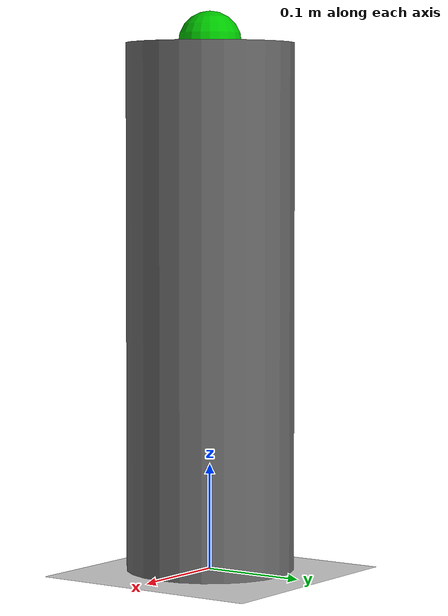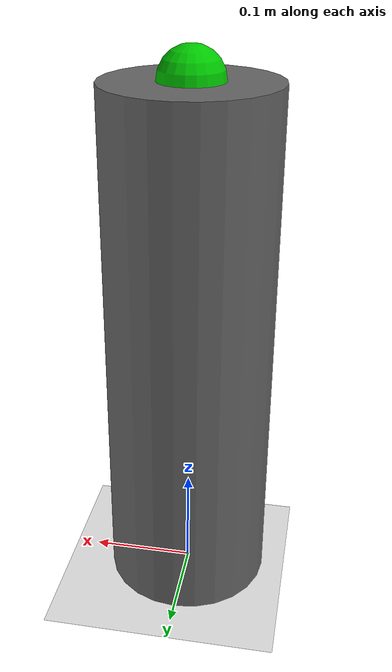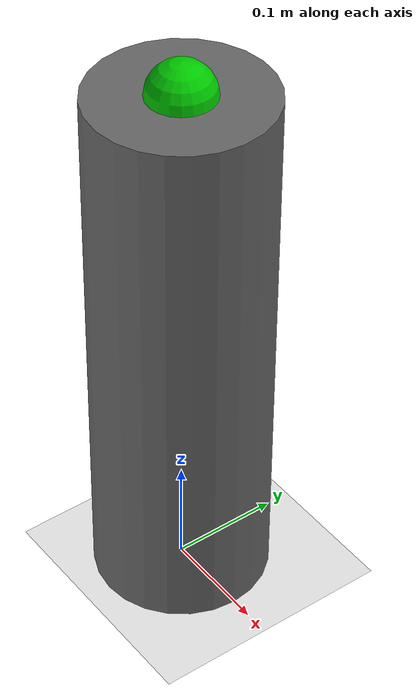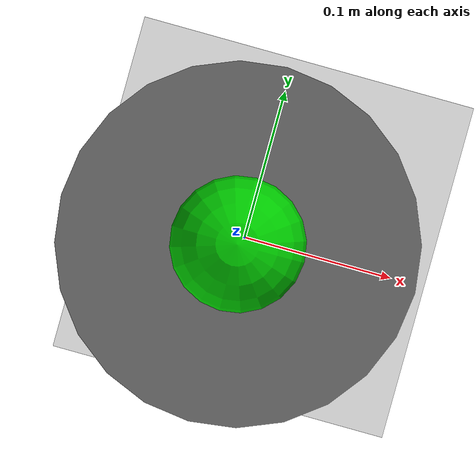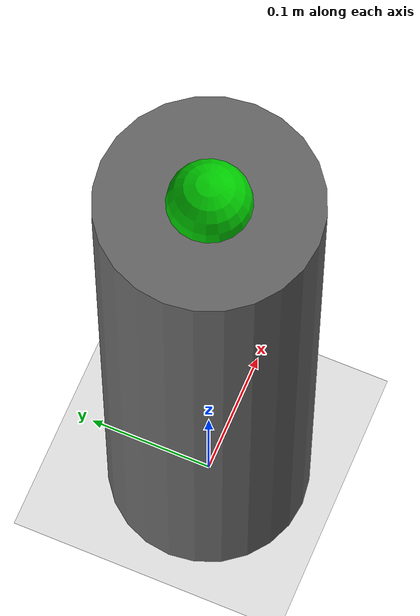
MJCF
<mujoco model="three_link_3d_arm">
    <compiler angle="degree"/>
    <option gravity="0 0 -9.81" timestep="0.002"/>

    <default>
        <joint damping="1.0" limited="true"/>
        <geom contype="0" conaffinity="0"/>
    </default>

    <worldbody>
        <!-- Lighting and ground (provided) -->
        <light name="top" pos="0 0 3" dir="0 0 -1" diffuse="0.8 0.8 0.8"/>
        <light name="front" pos="2 -2 2" dir="-1 1 -1" diffuse="0.5 0.5 0.5"/>
        <geom name="floor" type="plane" size="3 3 0.1" rgba="0.9 0.9 0.9 1"
              pos="0 0 0" contype="0" conaffinity="0"/>

        <!-- Base pedestal (provided) — a fixed box the arm sits on -->
        <geom name="base_pedestal" type="cylinder" size="0.08 0.25"
              pos="0 0 0.25" rgba="0.4 0.4 0.4 1"/>
        <site name="base" pos="0 0 0.5" size="0.03" rgba="0 0.8 0 1"/>

    </worldbody>

</mujoco>
